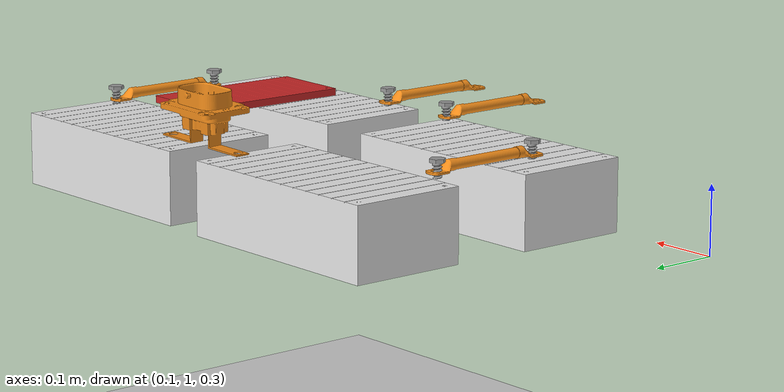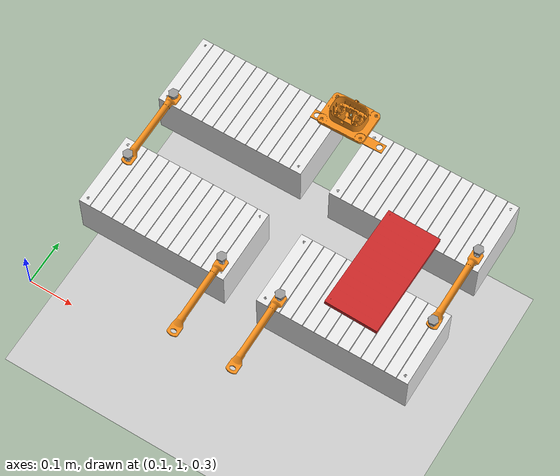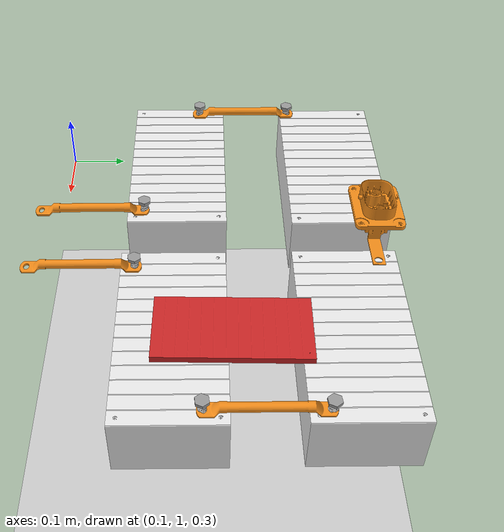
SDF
<sdf version="1.6">
 <world name="Pack6">
  <model name="ground_plane">
   <static>1</static>
   <link name="link">
    <collision name="collision">
     <geometry><plane><normal>0 0 1</normal><size>100 100</size></plane></geometry>
     <surface><friction><ode><mu>100</mu><mu2>50</mu2></ode></friction></surface>
    </collision>
    <visual name="visual">
     <cast_shadows>0</cast_shadows>
     <geometry><plane><normal>0 0 1</normal><size>100 100</size></plane></geometry>
     <material>
      <script><uri>file://media/materials/scripts/gazebo.material</uri><name>Gazebo/Grey</name></script>
     </material>
    </visual>
   </link>
  </model>
  <model name="MSD">
   <link name="link_0">
    <inertial>
     <mass>1</mass>
     <inertia>
      <ixx>0.166667</ixx>
      <ixy>0</ixy>
      <ixz>0</ixz>
      <iyy>0.166667</iyy>
      <iyz>0</iyz>
      <izz>0.166667</izz>
     </inertia>
    </inertial>
    <visual name="visual">
     <geometry>
      <mesh>
       <uri>/home/wanghu26/battery_ws/src/battery_model/battery_model_stl/HW_MSD.stl</uri>
       <scale>1 1 1</scale>
      </mesh>
     </geometry>
     <material>
      <lighting>1</lighting>
      <script><uri>file://media/materials/scripts/gazebo.material</uri><name>Gazebo/Orange</name></script>
     </material>
    </visual>
    <collision name="collision">
     <geometry>
      <mesh><uri>/home/wanghu26/battery_ws/src/battery_model/battery_model_stl/HW_MSD.stl</uri></mesh>
     </geometry>
     <surface>
      <friction>
       <ode><mu>1</mu><mu2>1</mu2><fdir1>0 0 0</fdir1><slip1>0</slip1><slip2>0</slip2></ode>
       <torsional>
        <coefficient>1</coefficient>
        <patch_radius>0</patch_radius>
        <surface_radius>0</surface_radius>
        <use_patch_radius>1</use_patch_radius>
        <ode><slip>0</slip></ode>
       </torsional>
      </friction>
      <bounce><restitution_coefficient>0</restitution_coefficient><threshold>1e+06</threshold></bounce>
      <contact>
       <collide_without_contact>0</collide_without_contact>
       <collide_without_contact_bitmask>1</collide_without_contact_bitmask>
       <collide_bitmask>1</collide_bitmask>
       <ode>
        <soft_cfm>0</soft_cfm>
        <soft_erp>0.2</soft_erp>
        <kp>1e+13</kp>
        <kd>1</kd>
        <max_vel>0.01</max_vel>
        <min_depth>0</min_depth>
       </ode>
       <bullet>
        <split_impulse>1</split_impulse>
        <split_impulse_penetration_threshold>-0.01</split_impulse_penetration_threshold>
        <soft_cfm>0</soft_cfm>
        <soft_erp>0.2</soft_erp>
        <kp>1e+13</kp>
        <kd>1</kd>
       </bullet>
      </contact>
     </surface>
    </collision>
   </link>
   <static>1</static>
   <pose>0.496 1.54665 0.480899 0 -0 0</pose>
  </model>
  <model name="BMS">
   <link name="link_1">
    <inertial>
     <mass>10</mass>
     <inertia><ixx>0.1275</ixx><ixy>0</ixy><ixz>0</ixz><iyy>0.3997</iyy><iyz>0</iyz><izz>0.4538</izz></inertia>
    </inertial>
    <visual name="visual">
     <geometry>
      <mesh>
       <uri>/home/wanghu26/battery_ws/src/battery_model/battery_model_stl/HW_Battery Module.stl</uri>
       <scale>0.35 0.35 0.05</scale>
      </mesh>
     </geometry>
     <material>
      <lighting>1</lighting>
      <script><uri>file://media/materials/scripts/gazebo.material</uri><name>Gazebo/Red</name></script>
      <shader type="pixel"/>
     </material>
    </visual>
    <collision name="collision">
     <geometry><box><size>0.33 0.165 0.105</size></box></geometry>
     <surface>
      <friction>
       <ode><mu>1</mu><mu2>1</mu2><fdir1>0 0 0</fdir1><slip1>0</slip1><slip2>0</slip2></ode>
       <torsional>
        <coefficient>1</coefficient>
        <patch_radius>0</patch_radius>
        <surface_radius>0</surface_radius>
        <use_patch_radius>1</use_patch_radius>
        <ode><slip>0</slip></ode>
       </torsional>
      </friction>
      <bounce><restitution_coefficient>0</restitution_coefficient><threshold>1e+06</threshold></bounce>
      <contact>
       <collide_without_contact>0</collide_without_contact>
       <collide_without_contact_bitmask>1</collide_without_contact_bitmask>
       <collide_bitmask>1</collide_bitmask>
       <ode>
        <soft_cfm>0</soft_cfm>
        <soft_erp>0.2</soft_erp>
        <kp>1e+13</kp>
        <kd>1</kd>
        <max_vel>0.01</max_vel>
        <min_depth>0.0001</min_depth>
       </ode>
       <bullet>
        <split_impulse>1</split_impulse>
        <split_impulse_penetration_threshold>-0.01</split_impulse_penetration_threshold>
        <soft_cfm>0</soft_cfm>
        <soft_erp>0.2</soft_erp>
        <kp>1e+13</kp>
        <kd>1</kd>
       </bullet>
      </contact>
     </surface>
    </collision>
   </link>
   <static>1</static>
   <pose>0.716911 1.30895 0.465546 0 -0 1.54711</pose>
  </model>
  <model name="HW_HV_cable_sc_f_short">
   <link name="link_1">
    <inertial>
     <mass>0.5</mass>
     <inertia><ixx>0.0017</ixx><ixy>0</ixy><ixz>0</ixz><iyy>0.00033333</iyy><iyz>0</iyz><izz>0.0017</izz></inertia>
    </inertial>
    <visual name="visual">
     <geometry>
      <mesh>
       <uri>/home/wanghu26/battery_ws/src/battery_model/battery_model_stl/HW_HV_cable .stl</uri>
       <scale>1 0.7 1</scale>
      </mesh>
     </geometry>
     <material>
      <lighting>1</lighting>
      <script><uri>file://media/materials/scripts/gazebo.material</uri><name>Gazebo/Orange</name></script>
      <shader type="pixel"/>
     </material>
    </visual>
    <collision name="collision">
     <pose>0.2 0 0 0 -0 0</pose>
     <geometry><box><size>0.02 0.15 0.02</size></box></geometry>
     <surface>
      <friction>
       <ode><mu>1</mu><mu2>1</mu2><fdir1>0 0 0</fdir1><slip1>0</slip1><slip2>0</slip2></ode>
       <torsional>
        <coefficient>1</coefficient>
        <patch_radius>0</patch_radius>
        <surface_radius>0</surface_radius>
        <use_patch_radius>1</use_patch_radius>
        <ode><slip>0</slip></ode>
       </torsional>
      </friction>
      <bounce><restitution_coefficient>0</restitution_coefficient><threshold>1e+06</threshold></bounce>
      <contact>
       <collide_without_contact>0</collide_without_contact>
       <collide_without_contact_bitmask>1</collide_without_contact_bitmask>
       <collide_bitmask>1</collide_bitmask>
       <ode>
        <soft_cfm>0</soft_cfm>
        <soft_erp>0.2</soft_erp>
        <kp>1e+13</kp>
        <kd>1</kd>
        <max_vel>0.01</max_vel>
        <min_depth>0</min_depth>
       </ode>
       <bullet>
        <split_impulse>1</split_impulse>
        <split_impulse_penetration_threshold>-0.01</split_impulse_penetration_threshold>
        <soft_cfm>0</soft_cfm>
        <soft_erp>0.2</soft_erp>
        <kp>1e+13</kp>
        <kd>1</kd>
       </bullet>
      </contact>
     </surface>
    </collision>
   </link>
   <static>1</static>
   <plugin name="groun_truth" filename="libgazebo_ros_p3d.so">
    <frameName>map</frameName>
    <bodyName>link_1</bodyName>
    <topicName>odom0a</topicName>
    <updateRate>30.0</updateRate>
   </plugin>
   <pose>0.445745 1.08302 0.46552 0 -0 0</pose>
  </model>
  <model name="HW_HV_cable_sc_f_short_0">
   <link name="link_1">
    <inertial>
     <mass>0.5</mass>
     <inertia><ixx>0.0017</ixx><ixy>0</ixy><ixz>0</ixz><iyy>0.00033333</iyy><iyz>0</iyz><izz>0.0017</izz></inertia>
    </inertial>
    <visual name="visual">
     <geometry>
      <mesh>
       <uri>/home/wanghu26/battery_ws/src/battery_model/battery_model_stl/HW_HV_cable .stl</uri>
       <scale>1 0.7 1</scale>
      </mesh>
     </geometry>
     <material>
      <lighting>1</lighting>
      <script><uri>file://media/materials/scripts/gazebo.material</uri><name>Gazebo/Orange</name></script>
      <shader type="pixel"/>
     </material>
    </visual>
    <collision name="collision">
     <pose>0.2 0 0 0 -0 0</pose>
     <geometry><box><size>0.02 0.15 0.02</size></box></geometry>
     <surface>
      <friction>
       <ode><mu>1</mu><mu2>1</mu2><fdir1>0 0 0</fdir1><slip1>0</slip1><slip2>0</slip2></ode>
       <torsional>
        <coefficient>1</coefficient>
        <patch_radius>0</patch_radius>
        <surface_radius>0</surface_radius>
        <use_patch_radius>1</use_patch_radius>
        <ode><slip>0</slip></ode>
       </torsional>
      </friction>
      <bounce><restitution_coefficient>0</restitution_coefficient><threshold>1e+06</threshold></bounce>
      <contact>
       <collide_without_contact>0</collide_without_contact>
       <collide_without_contact_bitmask>1</collide_without_contact_bitmask>
       <collide_bitmask>1</collide_bitmask>
       <ode>
        <soft_cfm>0</soft_cfm>
        <soft_erp>0.2</soft_erp>
        <kp>1e+13</kp>
        <kd>1</kd>
        <max_vel>0.01</max_vel>
        <min_depth>0</min_depth>
       </ode>
       <bullet>
        <split_impulse>1</split_impulse>
        <split_impulse_penetration_threshold>-0.01</split_impulse_penetration_threshold>
        <soft_cfm>0</soft_cfm>
        <soft_erp>0.2</soft_erp>
        <kp>1e+13</kp>
        <kd>1</kd>
       </bullet>
      </contact>
     </surface>
    </collision>
   </link>
   <static>1</static>
   <plugin name="groun_truth" filename="libgazebo_ros_p3d.so">
    <frameName>map</frameName>
    <bodyName>link_1</bodyName>
    <topicName>odom0a</topicName>
    <updateRate>30.0</updateRate>
   </plugin>
   <pose>0.850625 1.35155 0.462041 0 -0 0</pose>
  </model>
  <model name="HW_HV_cable_sc_f_short_1">
   <link name="link_1">
    <inertial>
     <mass>0.5</mass>
     <inertia><ixx>0.0017</ixx><ixy>0</ixy><ixz>0</ixz><iyy>0.00033333</iyy><iyz>0</iyz><izz>0.0017</izz></inertia>
    </inertial>
    <visual name="visual">
     <geometry>
      <mesh>
       <uri>/home/wanghu26/battery_ws/src/battery_model/battery_model_stl/HW_HV_cable .stl</uri>
       <scale>1 0.7 1</scale>
      </mesh>
     </geometry>
     <material>
      <lighting>1</lighting>
      <script><uri>file://media/materials/scripts/gazebo.material</uri><name>Gazebo/Orange</name></script>
      <shader type="pixel"/>
     </material>
    </visual>
    <collision name="collision">
     <pose>0.2 0 0 0 -0 0</pose>
     <geometry><box><size>0.02 0.15 0.02</size></box></geometry>
     <surface>
      <friction>
       <ode><mu>1</mu><mu2>1</mu2><fdir1>0 0 0</fdir1><slip1>0</slip1><slip2>0</slip2></ode>
       <torsional>
        <coefficient>1</coefficient>
        <patch_radius>0</patch_radius>
        <surface_radius>0</surface_radius>
        <use_patch_radius>1</use_patch_radius>
        <ode><slip>0</slip></ode>
       </torsional>
      </friction>
      <bounce><restitution_coefficient>0</restitution_coefficient><threshold>1e+06</threshold></bounce>
      <contact>
       <collide_without_contact>0</collide_without_contact>
       <collide_without_contact_bitmask>1</collide_without_contact_bitmask>
       <collide_bitmask>1</collide_bitmask>
       <ode>
        <soft_cfm>0</soft_cfm>
        <soft_erp>0.2</soft_erp>
        <kp>1e+13</kp>
        <kd>1</kd>
        <max_vel>0.01</max_vel>
        <min_depth>0</min_depth>
       </ode>
       <bullet>
        <split_impulse>1</split_impulse>
        <split_impulse_penetration_threshold>-0.01</split_impulse_penetration_threshold>
        <soft_cfm>0</soft_cfm>
        <soft_erp>0.2</soft_erp>
        <kp>1e+13</kp>
        <kd>1</kd>
       </bullet>
      </contact>
     </surface>
    </collision>
   </link>
   <static>1</static>
   <plugin name="groun_truth" filename="libgazebo_ros_p3d.so">
    <frameName>map</frameName>
    <bodyName>link_1</bodyName>
    <topicName>odom0a</topicName>
    <updateRate>30.0</updateRate>
   </plugin>
   <pose>0.579613 1.07717 0.464412 0 -0 0</pose>
  </model>
  <model name="HW_HV_cable_sc_f_short_2">
   <link name="link_1">
    <inertial>
     <mass>0.5</mass>
     <inertia><ixx>0.0017</ixx><ixy>0</ixy><ixz>0</ixz><iyy>0.00033333</iyy><iyz>0</iyz><izz>0.0017</izz></inertia>
    </inertial>
    <visual name="visual">
     <geometry>
      <mesh>
       <uri>/home/wanghu26/battery_ws/src/battery_model/battery_model_stl/HW_HV_cable .stl</uri>
       <scale>1 0.7 1</scale>
      </mesh>
     </geometry>
     <material>
      <lighting>1</lighting>
      <script><uri>file://media/materials/scripts/gazebo.material</uri><name>Gazebo/Orange</name></script>
      <shader type="pixel"/>
     </material>
    </visual>
    <collision name="collision">
     <pose>0.2 0 0 0 -0 0</pose>
     <geometry><box><size>0.02 0.15 0.02</size></box></geometry>
     <surface>
      <friction>
       <ode><mu>1</mu><mu2>1</mu2><fdir1>0 0 0</fdir1><slip1>0</slip1><slip2>0</slip2></ode>
       <torsional>
        <coefficient>1</coefficient>
        <patch_radius>0</patch_radius>
        <surface_radius>0</surface_radius>
        <use_patch_radius>1</use_patch_radius>
        <ode><slip>0</slip></ode>
       </torsional>
      </friction>
      <bounce><restitution_coefficient>0</restitution_coefficient><threshold>1e+06</threshold></bounce>
      <contact>
       <collide_without_contact>0</collide_without_contact>
       <collide_without_contact_bitmask>1</collide_without_contact_bitmask>
       <collide_bitmask>1</collide_bitmask>
       <ode>
        <soft_cfm>0</soft_cfm>
        <soft_erp>0.2</soft_erp>
        <kp>1e+13</kp>
        <kd>1</kd>
        <max_vel>0.01</max_vel>
        <min_depth>0</min_depth>
       </ode>
       <bullet>
        <split_impulse>1</split_impulse>
        <split_impulse_penetration_threshold>-0.01</split_impulse_penetration_threshold>
        <soft_cfm>0</soft_cfm>
        <soft_erp>0.2</soft_erp>
        <kp>1e+13</kp>
        <kd>1</kd>
       </bullet>
      </contact>
     </surface>
    </collision>
   </link>
   <static>1</static>
   <plugin name="groun_truth" filename="libgazebo_ros_p3d.so">
    <frameName>map</frameName>
    <bodyName>link_1</bodyName>
    <topicName>odom0a</topicName>
    <updateRate>30.0</updateRate>
   </plugin>
   <pose>0.172231 1.34266 0.471279 0 -0 0</pose>
  </model>
  <model name="HW_battery_module_sc_fr_1_half_clone">
   <link name="link_1">
    <inertial>
     <mass>10</mass>
     <inertia><ixx>0.1275</ixx><ixy>0</ixy><ixz>0</ixz><iyy>0.3997</iyy><iyz>0</iyz><izz>0.4538</izz></inertia>
    </inertial>
    <visual name="visual">
     <geometry>
      <mesh>
       <uri>/home/wanghu26/battery_ws/src/battery_model/battery_model_stl/HW_Battery Module.stl</uri>
       <scale>0.5 0.5 0.5</scale>
      </mesh>
     </geometry>
     <material>
      <lighting>1</lighting>
      <script><uri>file://media/materials/scripts/gazebo.material</uri><name>Gazebo/White</name></script>
      <shader type="pixel"/>
     </material>
    </visual>
    <collision name="collision">
     <geometry><box><size>0.33 0.165 0.105</size></box></geometry>
     <surface>
      <friction>
       <ode><mu>1</mu><mu2>1</mu2><fdir1>0 0 0</fdir1><slip1>0</slip1><slip2>0</slip2></ode>
       <torsional>
        <coefficient>1</coefficient>
        <patch_radius>0</patch_radius>
        <surface_radius>0</surface_radius>
        <use_patch_radius>1</use_patch_radius>
        <ode><slip>0</slip></ode>
       </torsional>
      </friction>
      <bounce><restitution_coefficient>0</restitution_coefficient><threshold>1e+06</threshold></bounce>
      <contact>
       <collide_without_contact>0</collide_without_contact>
       <collide_without_contact_bitmask>1</collide_without_contact_bitmask>
       <collide_bitmask>1</collide_bitmask>
       <ode>
        <soft_cfm>0</soft_cfm>
        <soft_erp>0.2</soft_erp>
        <kp>1e+13</kp>
        <kd>1</kd>
        <max_vel>0.01</max_vel>
        <min_depth>0.0001</min_depth>
       </ode>
       <bullet>
        <split_impulse>1</split_impulse>
        <split_impulse_penetration_threshold>-0.01</split_impulse_penetration_threshold>
        <soft_cfm>0</soft_cfm>
        <soft_erp>0.2</soft_erp>
        <kp>1e+13</kp>
        <kd>1</kd>
       </bullet>
      </contact>
     </surface>
    </collision>
   </link>
   <static>1</static>
   <pose>0.300987 1.22324 0.4 0 -0 0</pose>
  </model>
  <model name="HW_battery_module_sc_fr_1_half_clone_clone">
   <link name="link_1">
    <inertial>
     <mass>10</mass>
     <inertia><ixx>0.1275</ixx><ixy>0</ixy><ixz>0</ixz><iyy>0.3997</iyy><iyz>0</iyz><izz>0.4538</izz></inertia>
    </inertial>
    <visual name="visual">
     <geometry>
      <mesh>
       <uri>/home/wanghu26/battery_ws/src/battery_model/battery_model_stl/HW_Battery Module.stl</uri>
       <scale>0.5 0.5 0.5</scale>
      </mesh>
     </geometry>
     <material>
      <lighting>1</lighting>
      <script><uri>file://media/materials/scripts/gazebo.material</uri><name>Gazebo/White</name></script>
      <shader type="pixel"/>
     </material>
    </visual>
    <collision name="collision">
     <geometry><box><size>0.33 0.165 0.105</size></box></geometry>
     <surface>
      <friction>
       <ode><mu>1</mu><mu2>1</mu2><fdir1>0 0 0</fdir1><slip1>0</slip1><slip2>0</slip2></ode>
       <torsional>
        <coefficient>1</coefficient>
        <patch_radius>0</patch_radius>
        <surface_radius>0</surface_radius>
        <use_patch_radius>1</use_patch_radius>
        <ode><slip>0</slip></ode>
       </torsional>
      </friction>
      <bounce><restitution_coefficient>0</restitution_coefficient><threshold>1e+06</threshold></bounce>
      <contact>
       <collide_without_contact>0</collide_without_contact>
       <collide_without_contact_bitmask>1</collide_without_contact_bitmask>
       <collide_bitmask>1</collide_bitmask>
       <ode>
        <soft_cfm>0</soft_cfm>
        <soft_erp>0.2</soft_erp>
        <kp>1e+13</kp>
        <kd>1</kd>
        <max_vel>0.01</max_vel>
        <min_depth>0.0001</min_depth>
       </ode>
       <bullet>
        <split_impulse>1</split_impulse>
        <split_impulse_penetration_threshold>-0.01</split_impulse_penetration_threshold>
        <soft_cfm>0</soft_cfm>
        <soft_erp>0.2</soft_erp>
        <kp>1e+13</kp>
        <kd>1</kd>
       </bullet>
      </contact>
     </surface>
    </collision>
   </link>
   <static>1</static>
   <pose>0.306769 1.49659 0.4 0 -0 0</pose>
  </model>
  <model name="HW_battery_module_sc_fr_2_half_clone">
   <link name="link_1">
    <inertial>
     <mass>10</mass>
     <inertia><ixx>0.1275</ixx><ixy>0</ixy><ixz>0</ixz><iyy>0.3997</iyy><iyz>0</iyz><izz>0.4538</izz></inertia>
    </inertial>
    <visual name="visual">
     <geometry>
      <mesh>
       <uri>/home/wanghu26/battery_ws/src/battery_model/battery_model_stl/HW_Battery Module.stl</uri>
       <scale>0.5 0.5 0.5</scale>
      </mesh>
     </geometry>
     <material>
      <lighting>1</lighting>
      <script><uri>file://media/materials/scripts/gazebo.material</uri><name>Gazebo/White</name></script>
      <shader type="pixel"/>
     </material>
    </visual>
    <collision name="collision">
     <geometry><box><size>0.33 0.165 0.105</size></box></geometry>
     <surface>
      <friction>
       <ode><mu>1</mu><mu2>1</mu2><fdir1>0 0 0</fdir1><slip1>0</slip1><slip2>0</slip2></ode>
       <torsional>
        <coefficient>1</coefficient>
        <patch_radius>0</patch_radius>
        <surface_radius>0</surface_radius>
        <use_patch_radius>1</use_patch_radius>
        <ode><slip>0</slip></ode>
       </torsional>
      </friction>
      <bounce><restitution_coefficient>0</restitution_coefficient><threshold>1e+06</threshold></bounce>
      <contact>
       <collide_without_contact>0</collide_without_contact>
       <collide_without_contact_bitmask>1</collide_without_contact_bitmask>
       <collide_bitmask>1</collide_bitmask>
       <ode>
        <soft_cfm>0</soft_cfm>
        <soft_erp>0.2</soft_erp>
        <kp>1e+13</kp>
        <kd>1</kd>
        <max_vel>0.01</max_vel>
        <min_depth>0.0001</min_depth>
       </ode>
       <bullet>
        <split_impulse>1</split_impulse>
        <split_impulse_penetration_threshold>-0.01</split_impulse_penetration_threshold>
        <soft_cfm>0</soft_cfm>
        <soft_erp>0.2</soft_erp>
        <kp>1e+13</kp>
        <kd>1</kd>
       </bullet>
      </contact>
     </surface>
    </collision>
   </link>
   <static>1</static>
   <pose>0.70628 1.22007 0.4 0 -0 0</pose>
  </model>
  <model name="HW_battery_module_sc_fr_2_half_clone_0">
   <link name="link_1">
    <inertial>
     <mass>10</mass>
     <inertia><ixx>0.1275</ixx><ixy>0</ixy><ixz>0</ixz><iyy>0.3997</iyy><iyz>0</iyz><izz>0.4538</izz></inertia>
    </inertial>
    <visual name="visual">
     <geometry>
      <mesh>
       <uri>/home/wanghu26/battery_ws/src/battery_model/battery_model_stl/HW_Battery Module.stl</uri>
       <scale>0.5 0.5 0.5</scale>
      </mesh>
     </geometry>
     <material>
      <lighting>1</lighting>
      <script><uri>file://media/materials/scripts/gazebo.material</uri><name>Gazebo/White</name></script>
      <shader type="pixel"/>
     </material>
    </visual>
    <collision name="collision">
     <geometry><box><size>0.33 0.165 0.105</size></box></geometry>
     <surface>
      <friction>
       <ode><mu>1</mu><mu2>1</mu2><fdir1>0 0 0</fdir1><slip1>0</slip1><slip2>0</slip2></ode>
       <torsional>
        <coefficient>1</coefficient>
        <patch_radius>0</patch_radius>
        <surface_radius>0</surface_radius>
        <use_patch_radius>1</use_patch_radius>
        <ode><slip>0</slip></ode>
       </torsional>
      </friction>
      <bounce><restitution_coefficient>0</restitution_coefficient><threshold>1e+06</threshold></bounce>
      <contact>
       <collide_without_contact>0</collide_without_contact>
       <collide_without_contact_bitmask>1</collide_without_contact_bitmask>
       <collide_bitmask>1</collide_bitmask>
       <ode>
        <soft_cfm>0</soft_cfm>
        <soft_erp>0.2</soft_erp>
        <kp>1e+13</kp>
        <kd>1</kd>
        <max_vel>0.01</max_vel>
        <min_depth>0.0001</min_depth>
       </ode>
       <bullet>
        <split_impulse>1</split_impulse>
        <split_impulse_penetration_threshold>-0.01</split_impulse_penetration_threshold>
        <soft_cfm>0</soft_cfm>
        <soft_erp>0.2</soft_erp>
        <kp>1e+13</kp>
        <kd>1</kd>
       </bullet>
      </contact>
     </surface>
    </collision>
   </link>
   <static>1</static>
   <pose>0.704551 1.49038 0.4 0 -0 0</pose>
  </model>
  <model name="HW_tap_bolt_sc_f_2_clone_1">
   <link name="link_2">
    <inertial>
     <mass>1</mass>
     <inertia>
      <ixx>0.0166667</ixx>
      <ixy>0</ixy>
      <ixz>0</ixz>
      <iyy>0.0166667</iyy>
      <iyz>0</iyz>
      <izz>0.0166667</izz>
     </inertia>
    </inertial>
    <pose>0 0 -1e-06 3.14159 -0.002979 3.14159</pose>
    <visual name="visual">
     <geometry>
      <mesh>
       <uri>/home/wanghu26/battery_ws/src/battery_model/battery_model_stl/HW_hex_bolt_tap_thread.stl</uri>
       <scale>1 1 1</scale>
      </mesh>
     </geometry>
     <material>
      <lighting>1</lighting>
      <script><uri>file://media/materials/scripts/gazebo.material</uri><name>Gazebo/Grey</name></script>
      <shader type="pixel"/>
     </material>
    </visual>
    <collision name="collision">
     <pose>0 0.1 0 0 -0 0</pose>
     <geometry><box><size>0.02 0.02 0.04</size></box></geometry>
     <surface>
      <friction>
       <ode><mu>1</mu><mu2>1</mu2><fdir1>0 0 0</fdir1><slip1>0</slip1><slip2>0</slip2></ode>
       <torsional>
        <coefficient>1</coefficient>
        <patch_radius>0.1</patch_radius>
        <surface_radius>0.1</surface_radius>
        <use_patch_radius>1</use_patch_radius>
        <ode><slip>0</slip></ode>
       </torsional>
      </friction>
      <bounce><restitution_coefficient>0</restitution_coefficient><threshold>1e+06</threshold></bounce>
      <contact>
       <collide_without_contact>0</collide_without_contact>
       <collide_without_contact_bitmask>1</collide_without_contact_bitmask>
       <collide_bitmask>1</collide_bitmask>
       <ode>
        <soft_cfm>0</soft_cfm>
        <soft_erp>0.2</soft_erp>
        <kp>1e+13</kp>
        <kd>1</kd>
        <max_vel>0.01</max_vel>
        <min_depth>0</min_depth>
       </ode>
       <bullet>
        <split_impulse>1</split_impulse>
        <split_impulse_penetration_threshold>-0.01</split_impulse_penetration_threshold>
        <soft_cfm>0</soft_cfm>
        <soft_erp>0.2</soft_erp>
        <kp>1e+13</kp>
        <kd>1</kd>
       </bullet>
      </contact>
     </surface>
    </collision>
   </link>
   <static>1</static>
   <pose>0.444205 1.16999 0.462755 0 -0 0</pose>
  </model>
  <model name="HW_tap_bolt_sc_f_2_clone_2">
   <link name="link_2">
    <inertial>
     <mass>1</mass>
     <inertia>
      <ixx>0.0166667</ixx>
      <ixy>0</ixy>
      <ixz>0</ixz>
      <iyy>0.0166667</iyy>
      <iyz>0</iyz>
      <izz>0.0166667</izz>
     </inertia>
    </inertial>
    <pose>0 0 -1e-06 3.14159 -0.002979 3.14159</pose>
    <visual name="visual">
     <geometry>
      <mesh>
       <uri>/home/wanghu26/battery_ws/src/battery_model/battery_model_stl/HW_hex_bolt_tap_thread.stl</uri>
       <scale>1 1 1</scale>
      </mesh>
     </geometry>
     <material>
      <lighting>1</lighting>
      <script><uri>file://media/materials/scripts/gazebo.material</uri><name>Gazebo/Grey</name></script>
      <shader type="pixel"/>
     </material>
    </visual>
    <collision name="collision">
     <pose>0 0.1 0 0 -0 0</pose>
     <geometry><box><size>0.02 0.02 0.04</size></box></geometry>
     <surface>
      <friction>
       <ode><mu>1</mu><mu2>1</mu2><fdir1>0 0 0</fdir1><slip1>0</slip1><slip2>0</slip2></ode>
       <torsional>
        <coefficient>1</coefficient>
        <patch_radius>0.1</patch_radius>
        <surface_radius>0.1</surface_radius>
        <use_patch_radius>1</use_patch_radius>
        <ode><slip>0</slip></ode>
       </torsional>
      </friction>
      <bounce><restitution_coefficient>0</restitution_coefficient><threshold>1e+06</threshold></bounce>
      <contact>
       <collide_without_contact>0</collide_without_contact>
       <collide_without_contact_bitmask>1</collide_without_contact_bitmask>
       <collide_bitmask>1</collide_bitmask>
       <ode>
        <soft_cfm>0</soft_cfm>
        <soft_erp>0.2</soft_erp>
        <kp>1e+13</kp>
        <kd>1</kd>
        <max_vel>0.01</max_vel>
        <min_depth>0</min_depth>
       </ode>
       <bullet>
        <split_impulse>1</split_impulse>
        <split_impulse_penetration_threshold>-0.01</split_impulse_penetration_threshold>
        <soft_cfm>0</soft_cfm>
        <soft_erp>0.2</soft_erp>
        <kp>1e+13</kp>
        <kd>1</kd>
       </bullet>
      </contact>
     </surface>
    </collision>
   </link>
   <static>1</static>
   <pose>0.579567 1.16097 0.46135 0 -0 0</pose>
  </model>
  <model name="HW_tap_bolt_sc_f_2_clone_3">
   <link name="link_2">
    <inertial>
     <mass>1</mass>
     <inertia>
      <ixx>0.0166667</ixx>
      <ixy>0</ixy>
      <ixz>0</ixz>
      <iyy>0.0166667</iyy>
      <iyz>0</iyz>
      <izz>0.0166667</izz>
     </inertia>
    </inertial>
    <pose>0 0 -1e-06 3.14159 -0.002979 3.14159</pose>
    <visual name="visual">
     <geometry>
      <mesh>
       <uri>/home/wanghu26/battery_ws/src/battery_model/battery_model_stl/HW_hex_bolt_tap_thread.stl</uri>
       <scale>1 1 1</scale>
      </mesh>
     </geometry>
     <material>
      <lighting>1</lighting>
      <script><uri>file://media/materials/scripts/gazebo.material</uri><name>Gazebo/Grey</name></script>
      <shader type="pixel"/>
     </material>
    </visual>
    <collision name="collision">
     <pose>0 0.1 0 0 -0 0</pose>
     <geometry><box><size>0.02 0.02 0.04</size></box></geometry>
     <surface>
      <friction>
       <ode><mu>1</mu><mu2>1</mu2><fdir1>0 0 0</fdir1><slip1>0</slip1><slip2>0</slip2></ode>
       <torsional>
        <coefficient>1</coefficient>
        <patch_radius>0.1</patch_radius>
        <surface_radius>0.1</surface_radius>
        <use_patch_radius>1</use_patch_radius>
        <ode><slip>0</slip></ode>
       </torsional>
      </friction>
      <bounce><restitution_coefficient>0</restitution_coefficient><threshold>1e+06</threshold></bounce>
      <contact>
       <collide_without_contact>0</collide_without_contact>
       <collide_without_contact_bitmask>1</collide_without_contact_bitmask>
       <collide_bitmask>1</collide_bitmask>
       <ode>
        <soft_cfm>0</soft_cfm>
        <soft_erp>0.2</soft_erp>
        <kp>1e+13</kp>
        <kd>1</kd>
        <max_vel>0.01</max_vel>
        <min_depth>0</min_depth>
       </ode>
       <bullet>
        <split_impulse>1</split_impulse>
        <split_impulse_penetration_threshold>-0.01</split_impulse_penetration_threshold>
        <soft_cfm>0</soft_cfm>
        <soft_erp>0.2</soft_erp>
        <kp>1e+13</kp>
        <kd>1</kd>
       </bullet>
      </contact>
     </surface>
    </collision>
   </link>
   <static>1</static>
   <pose>0.850701 1.26516 0.460533 0 -0 0</pose>
  </model>
  <model name="HW_tap_bolt_sc_f_2_clone_4">
   <link name="link_2">
    <inertial>
     <mass>1</mass>
     <inertia>
      <ixx>0.0166667</ixx>
      <ixy>0</ixy>
      <ixz>0</ixz>
      <iyy>0.0166667</iyy>
      <iyz>0</iyz>
      <izz>0.0166667</izz>
     </inertia>
    </inertial>
    <pose>0 0 -1e-06 3.14159 -0.002979 3.14159</pose>
    <visual name="visual">
     <geometry>
      <mesh>
       <uri>/home/wanghu26/battery_ws/src/battery_model/battery_model_stl/HW_hex_bolt_tap_thread.stl</uri>
       <scale>1 1 1</scale>
      </mesh>
     </geometry>
     <material>
      <lighting>1</lighting>
      <script><uri>file://media/materials/scripts/gazebo.material</uri><name>Gazebo/Grey</name></script>
      <shader type="pixel"/>
     </material>
    </visual>
    <collision name="collision">
     <pose>0 0.1 0 0 -0 0</pose>
     <geometry><box><size>0.02 0.02 0.04</size></box></geometry>
     <surface>
      <friction>
       <ode><mu>1</mu><mu2>1</mu2><fdir1>0 0 0</fdir1><slip1>0</slip1><slip2>0</slip2></ode>
       <torsional>
        <coefficient>1</coefficient>
        <patch_radius>0.1</patch_radius>
        <surface_radius>0.1</surface_radius>
        <use_patch_radius>1</use_patch_radius>
        <ode><slip>0</slip></ode>
       </torsional>
      </friction>
      <bounce><restitution_coefficient>0</restitution_coefficient><threshold>1e+06</threshold></bounce>
      <contact>
       <collide_without_contact>0</collide_without_contact>
       <collide_without_contact_bitmask>1</collide_without_contact_bitmask>
       <collide_bitmask>1</collide_bitmask>
       <ode>
        <soft_cfm>0</soft_cfm>
        <soft_erp>0.2</soft_erp>
        <kp>1e+13</kp>
        <kd>1</kd>
        <max_vel>0.01</max_vel>
        <min_depth>0</min_depth>
       </ode>
       <bullet>
        <split_impulse>1</split_impulse>
        <split_impulse_penetration_threshold>-0.01</split_impulse_penetration_threshold>
        <soft_cfm>0</soft_cfm>
        <soft_erp>0.2</soft_erp>
        <kp>1e+13</kp>
        <kd>1</kd>
       </bullet>
      </contact>
     </surface>
    </collision>
   </link>
   <static>1</static>
   <pose>0.850631 1.43965 0.45836 0 -0 0</pose>
  </model>
  <model name="HW_tap_bolt_sc_f_2_clone_5">
   <link name="link_2">
    <inertial>
     <mass>1</mass>
     <inertia>
      <ixx>0.0166667</ixx>
      <ixy>0</ixy>
      <ixz>0</ixz>
      <iyy>0.0166667</iyy>
      <iyz>0</iyz>
      <izz>0.0166667</izz>
     </inertia>
    </inertial>
    <pose>0 0 -1e-06 3.14159 -0.002979 3.14159</pose>
    <visual name="visual">
     <geometry>
      <mesh>
       <uri>/home/wanghu26/battery_ws/src/battery_model/battery_model_stl/HW_hex_bolt_tap_thread.stl</uri>
       <scale>1 1 1</scale>
      </mesh>
     </geometry>
     <material>
      <lighting>1</lighting>
      <script><uri>file://media/materials/scripts/gazebo.material</uri><name>Gazebo/Grey</name></script>
      <shader type="pixel"/>
     </material>
    </visual>
    <collision name="collision">
     <pose>0 0.1 0 0 -0 0</pose>
     <geometry><box><size>0.02 0.02 0.04</size></box></geometry>
     <surface>
      <friction>
       <ode><mu>1</mu><mu2>1</mu2><fdir1>0 0 0</fdir1><slip1>0</slip1><slip2>0</slip2></ode>
       <torsional>
        <coefficient>1</coefficient>
        <patch_radius>0.1</patch_radius>
        <surface_radius>0.1</surface_radius>
        <use_patch_radius>1</use_patch_radius>
        <ode><slip>0</slip></ode>
       </torsional>
      </friction>
      <bounce><restitution_coefficient>0</restitution_coefficient><threshold>1e+06</threshold></bounce>
      <contact>
       <collide_without_contact>0</collide_without_contact>
       <collide_without_contact_bitmask>1</collide_without_contact_bitmask>
       <collide_bitmask>1</collide_bitmask>
       <ode>
        <soft_cfm>0</soft_cfm>
        <soft_erp>0.2</soft_erp>
        <kp>1e+13</kp>
        <kd>1</kd>
        <max_vel>0.01</max_vel>
        <min_depth>0</min_depth>
       </ode>
       <bullet>
        <split_impulse>1</split_impulse>
        <split_impulse_penetration_threshold>-0.01</split_impulse_penetration_threshold>
        <soft_cfm>0</soft_cfm>
        <soft_erp>0.2</soft_erp>
        <kp>1e+13</kp>
        <kd>1</kd>
       </bullet>
      </contact>
     </surface>
    </collision>
   </link>
   <static>1</static>
   <pose>0.17152 1.2613 0.467722 0 -0 0</pose>
  </model>
  <model name="HW_tap_bolt_sc_f_2_clone_6">
   <link name="link_2">
    <inertial>
     <mass>1</mass>
     <inertia>
      <ixx>0.0166667</ixx>
      <ixy>0</ixy>
      <ixz>0</ixz>
      <iyy>0.0166667</iyy>
      <iyz>0</iyz>
      <izz>0.0166667</izz>
     </inertia>
    </inertial>
    <pose>0 0 -1e-06 3.14159 -0.002979 3.14159</pose>
    <visual name="visual">
     <geometry>
      <mesh>
       <uri>/home/wanghu26/battery_ws/src/battery_model/battery_model_stl/HW_hex_bolt_tap_thread.stl</uri>
       <scale>1 1 1</scale>
      </mesh>
     </geometry>
     <material>
      <lighting>1</lighting>
      <script><uri>file://media/materials/scripts/gazebo.material</uri><name>Gazebo/Grey</name></script>
      <shader type="pixel"/>
     </material>
    </visual>
    <collision name="collision">
     <pose>0 0.1 0 0 -0 0</pose>
     <geometry><box><size>0.02 0.02 0.04</size></box></geometry>
     <surface>
      <friction>
       <ode><mu>1</mu><mu2>1</mu2><fdir1>0 0 0</fdir1><slip1>0</slip1><slip2>0</slip2></ode>
       <torsional>
        <coefficient>1</coefficient>
        <patch_radius>0.1</patch_radius>
        <surface_radius>0.1</surface_radius>
        <use_patch_radius>1</use_patch_radius>
        <ode><slip>0</slip></ode>
       </torsional>
      </friction>
      <bounce><restitution_coefficient>0</restitution_coefficient><threshold>1e+06</threshold></bounce>
      <contact>
       <collide_without_contact>0</collide_without_contact>
       <collide_without_contact_bitmask>1</collide_without_contact_bitmask>
       <collide_bitmask>1</collide_bitmask>
       <ode>
        <soft_cfm>0</soft_cfm>
        <soft_erp>0.2</soft_erp>
        <kp>1e+13</kp>
        <kd>1</kd>
        <max_vel>0.01</max_vel>
        <min_depth>0</min_depth>
       </ode>
       <bullet>
        <split_impulse>1</split_impulse>
        <split_impulse_penetration_threshold>-0.01</split_impulse_penetration_threshold>
        <soft_cfm>0</soft_cfm>
        <soft_erp>0.2</soft_erp>
        <kp>1e+13</kp>
        <kd>1</kd>
       </bullet>
      </contact>
     </surface>
    </collision>
   </link>
   <static>1</static>
   <pose>0.171385 1.42412 0.465306 0 -0 0</pose>
  </model>
 </world>
</sdf>
